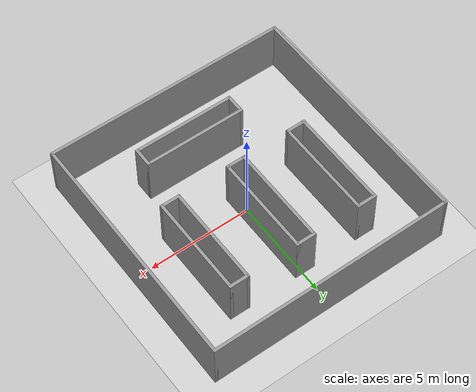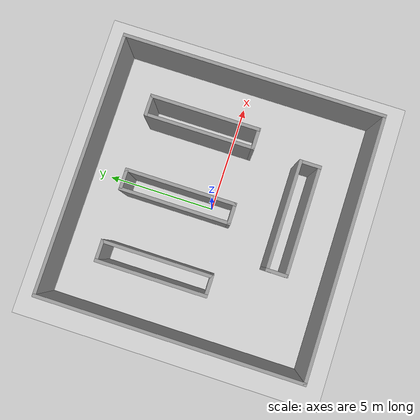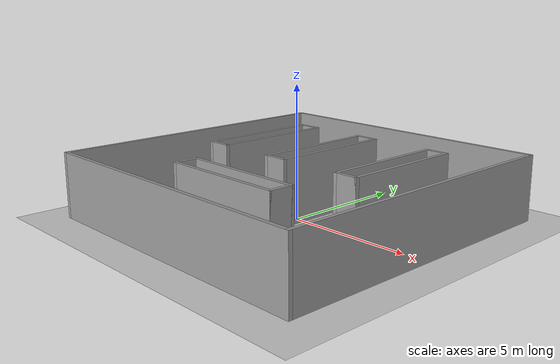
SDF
<sdf version='1.7'>
  <world name='default'>
    <!-- A global light source -->
    <include>
      <uri>model://sun</uri>
    </include>

    <!-- A ground plane -->
    <include>
      <uri>model://ground_plane</uri>
    </include>

    <physics type="ode">
      <real_time_update_rate>1000.0</real_time_update_rate>
      <max_step_size>0.001</max_step_size>
      <real_time_factor>1</real_time_factor>
      <ode>
        <solver>
          <type>quick</type>
          <iters>150</iters>
          <precon_iters>0</precon_iters>
          <sor>1.400000</sor>
          <use_dynamic_moi_rescaling>1</use_dynamic_moi_rescaling>
        </solver>
        <constraints>
          <cfm>0.00001</cfm>
          <erp>0.2</erp>
          <contact_max_correcting_vel>2000.000000</contact_max_correcting_vel>
          <contact_surface_layer>0.01000</contact_surface_layer>
        </constraints>
      </ode>
    </physics>

    <!-- Load world -->
    <include>
      <uri>model://warehouse</uri>
      <pose>0.0 0.0 0 0 0 0</pose>
    </include>

    <include>
      <uri>model://Shelf2</uri>
      <name>Shelf2_0</name>
      <pose>0.5 -4.2 0 0 0 -1.57113</pose>
    </include>

    <include>
      <uri>model://Shelf2</uri>
      <name>Shelf2_1</name>
      <pose>-2.6 1.5 0 0 -0 0</pose>
    </include>

    <include>
      <uri>model://Shelf2</uri>
      <name>Shelf2_2</name>
      <pose>0.6 1.5 0 0 -0 0</pose>
    </include>

    <include>
      <uri>model://Shelf2</uri>
      <name>Shelf2_3</name>
      <pose>4.0 1.5 0 0 -0 0</pose>
    </include>

    <scene>
      <ambient>0.4 0.4 0.4 1</ambient>
      <background>0.7 0.7 0.7 1</background>
      <shadows>true</shadows>
    </scene>

    <gui fullscreen='0'>
      <camera name='user_camera'>
        <pose>0.0 0.0 25.0 0.0 1.5698 1.57157</pose>
        <view_controller>orbit</view_controller>
      </camera>
    </gui>
  </world>
</sdf>

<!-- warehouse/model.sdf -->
<sdf version='1.7'>
  <model name='warehouse'>
    <pose>0.281361 1.23747 0 0 -0 0</pose>
    <link name='Wall_32'>
      <collision name='Wall_32_Collision'>
        <geometry>
          <box>
            <size>12 0.15 2.5</size>
          </box>
        </geometry>
        <pose>0 0 1.25 0 -0 0</pose>
      </collision>
      <visual name='Wall_32_Visual'>
        <pose>0 0 1.25 0 -0 0</pose>
        <geometry>
          <box>
            <size>12 0.15 2.5</size>
          </box>
        </geometry>
        <material>
          <script>
            <uri>file://media/materials/scripts/gazebo.material</uri>
            <name>Gazebo/Grey</name>
          </script>
          <ambient>1 1 1 1</ambient>
        </material>
        <meta>
          <layer>0</layer>
        </meta>
      </visual>
      <pose>0 5.925 0 0 -0 0</pose>
    </link>
    <link name='Wall_33'>
      <collision name='Wall_33_Collision'>
        <geometry>
          <box>
            <size>12 0.15 2.5</size>
          </box>
        </geometry>
        <pose>0 0 1.25 0 -0 0</pose>
      </collision>
      <visual name='Wall_33_Visual'>
        <pose>0 0 1.25 0 -0 0</pose>
        <geometry>
          <box>
            <size>12 0.15 2.5</size>
          </box>
        </geometry>
        <material>
          <script>
            <uri>file://media/materials/scripts/gazebo.material</uri>
            <name>Gazebo/Grey</name>
          </script>
          <ambient>1 1 1 1</ambient>
        </material>
        <meta>
          <layer>0</layer>
        </meta>
      </visual>
      <pose>5.925 0 0 0 -0 -1.5708</pose>
    </link>
    <link name='Wall_34'>
      <collision name='Wall_34_Collision'>
        <geometry>
          <box>
            <size>12 0.15 2.5</size>
          </box>
        </geometry>
        <pose>0 0 1.25 0 -0 0</pose>
      </collision>
      <visual name='Wall_34_Visual'>
        <pose>0 0 1.25 0 -0 0</pose>
        <geometry>
          <box>
            <size>12 0.15 2.5</size>
          </box>
        </geometry>
        <material>
          <script>
            <uri>file://media/materials/scripts/gazebo.material</uri>
            <name>Gazebo/Grey</name>
          </script>
          <ambient>1 1 1 1</ambient>
        </material>
        <meta>
          <layer>0</layer>
        </meta>
      </visual>
      <pose>0 -5.925 0 0 -0 3.14159</pose>
    </link>
    <link name='Wall_35'>
      <collision name='Wall_35_Collision'>
        <geometry>
          <box>
            <size>12 0.15 2.5</size>
          </box>
        </geometry>
        <pose>0 0 1.25 0 -0 0</pose>
      </collision>
      <visual name='Wall_35_Visual'>
        <pose>0 0 1.25 0 -0 0</pose>
        <geometry>
          <box>
            <size>12 0.15 2.5</size>
          </box>
        </geometry>
        <material>
          <script>
            <uri>file://media/materials/scripts/gazebo.material</uri>
            <name>Gazebo/Grey</name>
          </script>
          <ambient>1 1 1 1</ambient>
        </material>
        <meta>
          <layer>0</layer>
        </meta>
      </visual>
      <pose>-5.925 0 0 0 -0 1.5708</pose>
    </link>
    <static>1</static>
  </model>
</sdf>

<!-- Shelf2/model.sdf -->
<sdf version='1.7'>
  <model name='Shelf2'>
    <pose>-1.22628 0.823445 0 0 -0 0</pose>
    <link name='Wall_49'>
      <collision name='Wall_49_Collision'>
        <geometry>
          <box>
            <size>1 0.15 2.5</size>
          </box>
        </geometry>
        <pose>0 0 1.25 0 -0 0</pose>
      </collision>
      <visual name='Wall_49_Visual'>
        <pose>0 0 1.25 0 -0 0</pose>
        <geometry>
          <box>
            <size>1 0.15 2.5</size>
          </box>
        </geometry>
        <material>
          <script>
            <uri>file://media/materials/scripts/gazebo.material</uri>
            <name>Gazebo/Grey</name>
          </script>
          <ambient>1 1 1 1</ambient>
        </material>
        <meta>
          <layer>0</layer>
        </meta>
      </visual>
      <pose>-0.726277 2.425 0 0 -0 0</pose>
    </link>
    <link name='Wall_50'>
      <collision name='Wall_50_Collision'>
        <geometry>
          <box>
            <size>5 0.15 2.5</size>
          </box>
        </geometry>
        <pose>0 0 1.25 0 -0 0</pose>
      </collision>
      <visual name='Wall_50_Visual'>
        <pose>0 0 1.25 0 -0 0</pose>
        <geometry>
          <box>
            <size>5 0.15 2.5</size>
          </box>
        </geometry>
        <material>
          <script>
            <uri>file://media/materials/scripts/gazebo.material</uri>
            <name>Gazebo/Grey</name>
          </script>
          <ambient>1 1 1 1</ambient>
        </material>
        <meta>
          <layer>0</layer>
        </meta>
      </visual>
      <pose>-0.301277 0 0 0 -0 -1.5708</pose>
    </link>
    <link name='Wall_51'>
      <collision name='Wall_51_Collision'>
        <geometry>
          <box>
            <size>1 0.15 2.5</size>
          </box>
        </geometry>
        <pose>0 0 1.25 0 -0 0</pose>
      </collision>
      <visual name='Wall_51_Visual'>
        <pose>0 0 1.25 0 -0 0</pose>
        <geometry>
          <box>
            <size>1 0.15 2.5</size>
          </box>
        </geometry>
        <material>
          <script>
            <uri>file://media/materials/scripts/gazebo.material</uri>
            <name>Gazebo/Grey</name>
          </script>
          <ambient>1 1 1 1</ambient>
        </material>
        <meta>
          <layer>0</layer>
        </meta>
      </visual>
      <pose>-0.726277 -2.425 0 0 -0 3.14159</pose>
    </link>
    <link name='Wall_52'>
      <collision name='Wall_52_Collision'>
        <geometry>
          <box>
            <size>5 0.15 2.5</size>
          </box>
        </geometry>
        <pose>0 0 1.25 0 -0 0</pose>
      </collision>
      <visual name='Wall_52_Visual'>
        <pose>0 0 1.25 0 -0 0</pose>
        <geometry>
          <box>
            <size>5 0.15 2.5</size>
          </box>
        </geometry>
        <material>
          <script>
            <uri>file://media/materials/scripts/gazebo.material</uri>
            <name>Gazebo/Grey</name>
          </script>
          <ambient>1 1 1 1</ambient>
        </material>
        <meta>
          <layer>0</layer>
        </meta>
      </visual>
      <pose>-1.15128 0 0 0 -0 1.5708</pose>
    </link>
    <static>1</static>
  </model>
</sdf>
